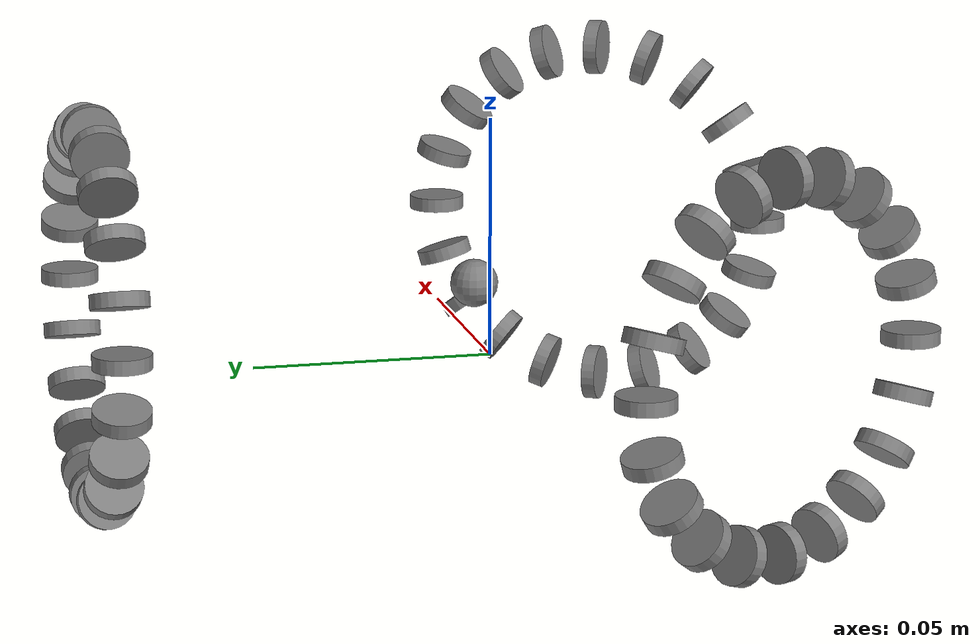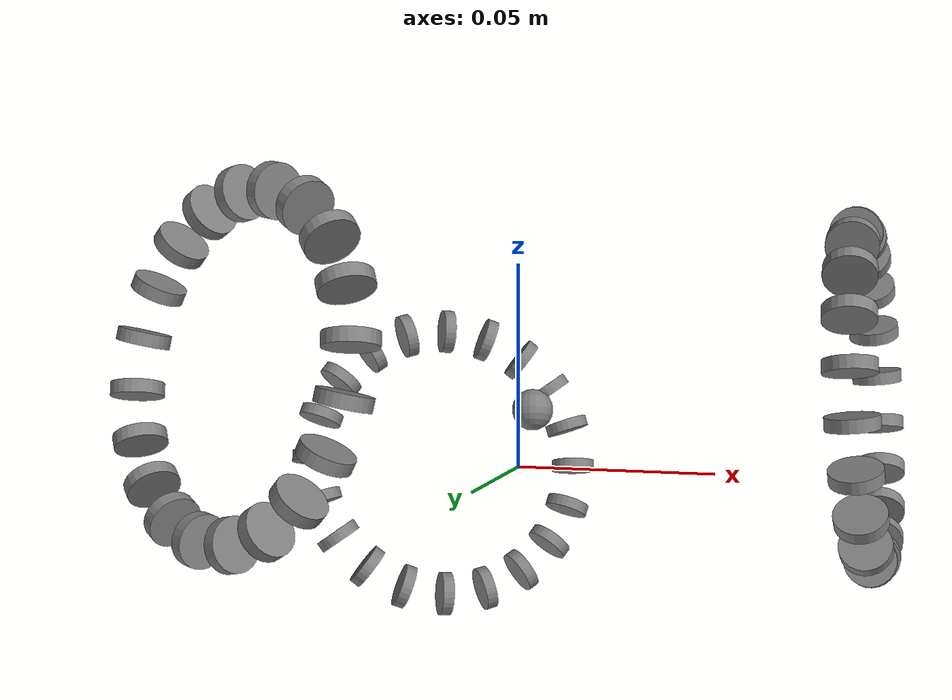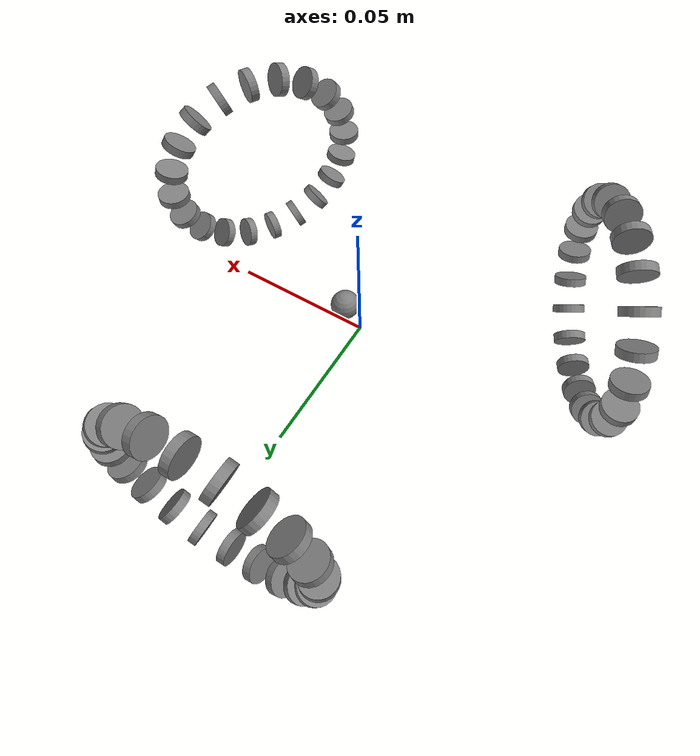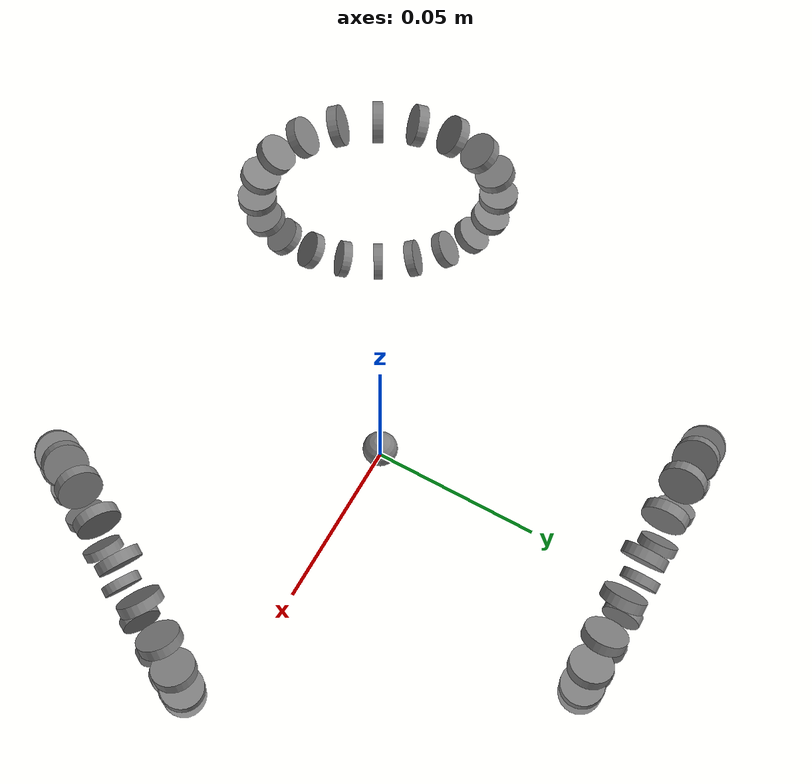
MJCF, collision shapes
<?xml version="1.0" ?>
<!-- Generated using onshape-to-robot -->
<!-- OnShape https://cad.onshape.com/documents/11c3398e78edfadf952cbdbc/w/4428506b5bb6358b44ff6764/e/975412fdc0fd0ba9ca2cf7b6 -->
<mujoco model="omnidirectional_mujoco">
    <compiler angle="radian" meshdir="assets" autolimits="true"/>
    <option noslip_iterations="1"/>
    <default>
        <default class="omnidirectional_mujoco">
            <joint frictionloss="0.1" armature="0.005"/>
            <position kp="50" dampratio="1"/>
            <default class="visual">
                <geom type="mesh" contype="0" conaffinity="0" group="2"/>
            </default>
            <default class="collision">
                <geom group="3"/>
            </default>
        </default>
    </default>
    <worldbody>
        <!-- Link body_2 -->
        <body name="body_2" pos="0 0 0" quat="1 0 0 0" childclass="omnidirectional_mujoco">
            <freejoint name="body_2_freejoint"/>
            <inertial pos="0.000413137 0.000238525 0.0129604" mass="0.55184" fullinertia="0.000615732 0.000620978 0.00118941 -4.54339e-06 -9.03686e-09 -5.21743e-09"/>
            <!-- Part plate -->
            <!-- Mesh plate -->
            <geom type="mesh" class="visual" pos="0 0 0" quat="1 0 0 0" mesh="plate" material="plate_material"/>
            <!-- Part plate_2 -->
            <!-- Mesh plate_2 -->
            <geom type="mesh" class="visual" pos="0 0 0.023" quat="1 0 0 0" mesh="plate" material="plate_material"/>
            <!-- Part motor -->
            <!-- Mesh motor -->
            <geom type="mesh" class="visual" pos="0 6.93889e-18 0" quat="0.5 0 0 -0.866025" mesh="motor" material="motor_material"/>
            <!-- Part motor_2 -->
            <!-- Mesh motor_2 -->
            <geom type="mesh" class="visual" pos="0 0 0" quat="1 0 0 0" mesh="motor" material="motor_material"/>
            <!-- Part motor_3 -->
            <!-- Mesh motor_3 -->
            <geom type="mesh" class="visual" pos="-1.73472e-18 -6.93889e-18 2.60209e-18" quat="0.5 0 0 0.866025" mesh="motor" material="motor_material"/>
            <!-- Frame body (dummy link + fixed joint) -->
            <site name="body" pos="0.00418699 0.00241736 0.0145" quat="0.965926 0 0 0.258819"/>
            <!-- Link wheel -->
            <body name="wheel" pos="0.069282 -0.04 0.013" quat="0.612372 -0.612372 -0.353553 0.353553">
                <!-- Joint from body_2 to wheel -->
                <joint name="wheel1_speed" type="hinge" frictionloss="0.0"/>
                <inertial pos="-9.28507e-11 -1.43812e-09 -0.0025" mass="0.0192491" fullinertia="6.87651e-06 6.87651e-06 1.36736e-05 4.74141e-13 -1.42889e-14 2.2762e-14"/>
                <!-- Part wheel -->
                <!-- Mesh wheel -->
                <geom type="mesh" class="visual" pos="-1.08731e-17 0.013 0.075" quat="0.612372 0.612372 0.353553 -0.353553" mesh="wheel" material="wheel_material"/>
                <!-- Link passivewheel -->
                <body name="passivewheel" pos="-0.0134903 -0.0350466 -0.0025" quat="0.705434 0.171758 0.68593 -0.0486126">
                    <!-- Joint from wheel to passivewheel -->
                    <joint name="w1_1_passive" type="hinge" frictionloss="0.0"/>
                    <inertial pos="-7.33894e-20 1.33556e-17 0.002" mass="0.00285906" fullinertia="2.77473e-08 2.77473e-08 4.89774e-08 -4.48199e-25 2.05686e-24 2.65374e-24"/>
                    <!-- Part passivewheel -->
                    <geom class="collision" pos="-8.65334e-20 1.37444e-17 0.002" quat="0 1 0 0" type="cylinder" size="0.006 0.0015"/>
                    <!-- Mesh passivewheel -->
                    <geom type="mesh" class="visual" pos="0 1.38778e-17 0.004" quat="0 1 0 0" mesh="passivewheel" material="passivewheel_material"/>
                </body>
                <!-- Link passivewheel_2 -->
                <body name="passivewheel_2" pos="-0.002 -0.0375 -0.0025" quat="0 0.707107 1.11022e-16 -0.707107">
                    <!-- Joint from wheel to passivewheel_2 -->
                    <joint name="w1_2_passive" type="hinge" frictionloss="0.0"/>
                    <inertial pos="-1.38094e-17 -3.88785e-19 -0.002" mass="0.00285906" fullinertia="2.77473e-08 2.77473e-08 4.89774e-08 3.7544e-39 -3.14348e-24 2.39064e-39"/>
                    <!-- Part passivewheel_2 -->
                    <geom class="collision" pos="-1.38226e-17 -6.23173e-35 -0.002" quat="0 1 0 0" type="cylinder" size="0.006 0.0015"/>
                    <!-- Mesh passivewheel_2 -->
                    <geom type="mesh" class="visual" pos="-1.38778e-17 0 -2.1684e-18" quat="0 1 0 0" mesh="passivewheel" material="passivewheel_material"/>
                </body>
                <!-- Link passivewheel_3 -->
                <body name="passivewheel_3" pos="0.00968602 -0.0362827 -0.0025" quat="0.705434 -0.171758 0.68593 0.0486126">
                    <!-- Joint from wheel to passivewheel_3 -->
                    <joint name="w1_3_passive" type="hinge" frictionloss="0.0"/>
                    <inertial pos="1.39053e-17 4.1565e-19 0.002" mass="0.00285906" fullinertia="2.77473e-08 2.77473e-08 4.89774e-08 -6.19881e-25 9.89486e-25 9.52171e-25"/>
                    <!-- Part passivewheel_3 -->
                    <geom class="collision" pos="1.38922e-17 2.6865e-20 0.002" quat="1 0 2.77556e-17 4.85723e-17" type="cylinder" size="0.006 0.0015"/>
                    <!-- Mesh passivewheel_3 -->
                    <geom type="mesh" class="visual" pos="1.38778e-17 0 -6.93889e-18" quat="1 0 2.77556e-17 4.85723e-17" mesh="passivewheel" material="passivewheel_material"/>
                </body>
                <!-- Link passivewheel_4 -->
                <body name="passivewheel_4" pos="0.0204239 -0.0315137 -0.0025" quat="0.325109 0.699106 0.106073 -0.627936">
                    <!-- Joint from wheel to passivewheel_4 -->
                    <joint name="w1_4_passive" type="hinge" frictionloss="0.0"/>
                    <inertial pos="-1.39492e-17 3.14241e-18 -0.002" mass="0.00285906" fullinertia="2.77473e-08 2.77473e-08 4.89774e-08 -1.50205e-25 2.32706e-24 -2.54013e-24"/>
                    <!-- Part passivewheel_4 -->
                    <geom class="collision" pos="-1.39623e-17 3.53119e-18 -0.002" quat="0 1 0 0" type="cylinder" size="0.006 0.0015"/>
                    <!-- Mesh passivewheel_4 -->
                    <geom type="mesh" class="visual" pos="-1.38778e-17 3.46945e-18 -1.73472e-18" quat="0 1 0 0" mesh="passivewheel" material="passivewheel_material"/>
                </body>
                <!-- Link passivewheel_5 -->
                <body name="passivewheel_5" pos="0.0291626 -0.02366 -0.0025" quat="0.44995 0.68464 0.176827 -0.545477">
                    <!-- Joint from wheel to passivewheel_5 -->
                    <joint name="w1_5_passive" type="hinge" frictionloss="0.0"/>
                    <inertial pos="1.2573e-19 1.35251e-18 -0.002" mass="0.00285906" fullinertia="2.77473e-08 2.77473e-08 4.89774e-08 8.92466e-25 -2.3837e-24 -1.42084e-24"/>
                    <!-- Part passivewheel_5 -->
                    <geom class="collision" pos="1.12586e-19 1.7413e-18 -0.002" quat="0 1 0 0" type="cylinder" size="0.006 0.0015"/>
                    <!-- Mesh passivewheel_5 -->
                    <geom type="mesh" class="visual" pos="0 1.73472e-18 0" quat="0 1 0 0" mesh="passivewheel" material="passivewheel_material"/>
                </body>
                <!-- Link passivewheel_6 -->
                <body name="passivewheel_6" pos="0.0350466 -0.0134903 -0.0025" quat="0.544721 0.657385 0.26047 -0.450865">
                    <!-- Joint from wheel to passivewheel_6 -->
                    <joint name="w1_6_passive" type="hinge" frictionloss="0.0"/>
                    <inertial pos="-7.85727e-21 -1.22e-18 -0.002" mass="0.00285906" fullinertia="2.77473e-08 2.77473e-08 4.89774e-08 1.46704e-26 8.78998e-25 -3.12268e-25"/>
                    <!-- Part passivewheel_6 -->
                    <geom class="collision" pos="-2.10013e-20 -8.31218e-19 -0.002" quat="0 1 0 0" type="cylinder" size="0.006 0.0015"/>
                    <!-- Mesh passivewheel_6 -->
                    <geom type="mesh" class="visual" pos="0 -8.67362e-19 1.73472e-18" quat="0 1 0 0" mesh="passivewheel" material="passivewheel_material"/>
                </body>
                <!-- Link passivewheel_7 -->
                <body name="passivewheel_7" pos="0.0375 -0.002 -0.0025" quat="0.612372 0.612372 0.353553 -0.353553">
                    <!-- Joint from wheel to passivewheel_7 -->
                    <joint name="w1_7_passive" type="hinge" frictionloss="0.0"/>
                    <inertial pos="1.3144e-20 -1.34594e-18 -0.002" mass="0.00285906" fullinertia="2.77473e-08 2.77473e-08 4.89774e-08 2.56509e-39 -2.09345e-39 -1.51313e-38"/>
                    <!-- Part passivewheel_7 -->
                    <geom class="collision" pos="-1.97215e-34 -1.73472e-18 -0.002" quat="1 0 -1.24049e-21 -1.11022e-16" type="cylinder" size="0.006 0.0015"/>
                    <!-- Mesh passivewheel_7 -->
                    <geom type="mesh" class="visual" pos="0 -1.73472e-18 -0.004" quat="1 0 -1.24049e-21 -1.11022e-16" mesh="passivewheel" material="passivewheel_material"/>
                </body>
                <!-- Link passivewheel_8 -->
                <body name="passivewheel_8" pos="0.0362827 0.00968602 -0.0025" quat="0.544721 -0.657385 0.26047 0.450865">
                    <!-- Joint from wheel to passivewheel_8 -->
                    <joint name="w1_8_passive" type="hinge" frictionloss="0.0"/>
                    <inertial pos="-1.39027e-17 1.37287e-18 0.002" mass="0.00285906" fullinertia="2.77473e-08 2.77473e-08 4.89774e-08 3.02658e-25 7.81085e-25 -5.33888e-25"/>
                    <!-- Part passivewheel_8 -->
                    <geom class="collision" pos="-1.39158e-17 1.76166e-18 0.002" quat="0 1 0 0" type="cylinder" size="0.006 0.0015"/>
                    <!-- Mesh passivewheel_8 -->
                    <geom type="mesh" class="visual" pos="-1.38778e-17 1.73472e-18 0.004" quat="0 1 0 0" mesh="passivewheel" material="passivewheel_material"/>
                </body>
                <!-- Link passivewheel_9 -->
                <body name="passivewheel_9" pos="0.0315137 0.0204239 -0.0025" quat="0.68464 0.44995 0.545477 -0.176827">
                    <!-- Joint from wheel to passivewheel_9 -->
                    <joint name="w1_9_passive" type="hinge" frictionloss="0.0"/>
                    <inertial pos="-6.29107e-20 2.00403e-18 -0.002" mass="0.00285906" fullinertia="2.77473e-08 2.77473e-08 4.89774e-08 1.81304e-24 -3.34937e-24 -3.1984e-24"/>
                    <!-- Part passivewheel_9 -->
                    <geom class="collision" pos="-7.60547e-20 1.61524e-18 -0.002" quat="1 1.27569e-17 5.55112e-17 -1.38778e-16" type="cylinder" size="0.006 0.0015"/>
                    <!-- Mesh passivewheel_9 -->
                    <geom type="mesh" class="visual" pos="0 1.73472e-18 -0.004" quat="1 1.27569e-17 5.55112e-17 -1.38778e-16" mesh="passivewheel" material="passivewheel_material"/>
                </body>
                <!-- Link passivewheel_10 -->
                <body name="passivewheel_10" pos="0.02366 0.0291626 -0.0025" quat="0.699106 0.325109 0.627936 -0.106073">
                    <!-- Joint from wheel to passivewheel_10 -->
                    <joint name="w1_10_passive" type="hinge" frictionloss="0.0"/>
                    <inertial pos="2.75667e-17 1.76333e-18 -0.002" mass="0.00285906" fullinertia="2.77473e-08 2.77473e-08 4.89774e-08 -9.51103e-25 3.7954e-24 -3.63174e-25"/>
                    <!-- Part passivewheel_10 -->
                    <geom class="collision" pos="2.75535e-17 2.15212e-18 -0.002" quat="0 1 0 0" type="cylinder" size="0.006 0.0015"/>
                    <!-- Mesh passivewheel_10 -->
                    <geom type="mesh" class="visual" pos="2.77556e-17 2.05998e-18 1.73472e-18" quat="0 1 0 0" mesh="passivewheel" material="passivewheel_material"/>
                </body>
                <!-- Link passivewheel_11 -->
                <body name="passivewheel_11" pos="0.0134903 0.0350466 -0.0025" quat="0.705434 0.171758 0.68593 -0.0486126">
                    <!-- Joint from wheel to passivewheel_11 -->
                    <joint name="w1_11_passive" type="hinge" frictionloss="0.0"/>
                    <inertial pos="5.49999e-20 3.04416e-18 -0.002" mass="0.00285906" fullinertia="2.77473e-08 2.77473e-08 4.89774e-08 6.30044e-25 3.57847e-25 6.72405e-25"/>
                    <!-- Part passivewheel_11 -->
                    <geom class="collision" pos="4.18559e-20 3.43295e-18 -0.002" quat="0 1 0 0" type="cylinder" size="0.006 0.0015"/>
                    <!-- Mesh passivewheel_11 -->
                    <geom type="mesh" class="visual" pos="0 3.46945e-18 7.80626e-18" quat="0 1 0 0" mesh="passivewheel" material="passivewheel_material"/>
                </body>
                <!-- Link passivewheel_12 -->
                <body name="passivewheel_12" pos="0.002 0.0375 -0.0025" quat="0.707107 1.80742e-16 0.707107 -2.22045e-16">
                    <!-- Joint from wheel to passivewheel_12 -->
                    <joint name="w1_12_passive" type="hinge" frictionloss="0.0"/>
                    <inertial pos="2.75764e-17 -3.88785e-19 -0.002" mass="0.00285906" fullinertia="2.77473e-08 2.77473e-08 4.89774e-08 -8.55029e-41 4.29637e-24 -1.20739e-39"/>
                    <!-- Part passivewheel_12 -->
                    <geom class="collision" pos="2.75633e-17 4.93038e-35 -0.002" quat="0 1 0 0" type="cylinder" size="0.006 0.0015"/>
                    <!-- Mesh passivewheel_12 -->
                    <geom type="mesh" class="visual" pos="2.77556e-17 0 -4.77049e-18" quat="0 1 0 0" mesh="passivewheel" material="passivewheel_material"/>
                </body>
                <!-- Link passivewheel_13 -->
                <body name="passivewheel_13" pos="-0.00968602 0.0362827 -0.0025" quat="0.705434 -0.171758 0.68593 0.0486126">
                    <!-- Joint from wheel to passivewheel_13 -->
                    <joint name="w1_13_passive" type="hinge" frictionloss="0.0"/>
                    <inertial pos="8.53194e-20 -3.92688e-19 -0.002" mass="0.00285906" fullinertia="2.77473e-08 2.77473e-08 4.89774e-08 8.22243e-25 -3.87642e-24 5.15763e-26"/>
                    <!-- Part passivewheel_13 -->
                    <geom class="collision" pos="7.21753e-20 -3.90318e-21 -0.002" quat="0 1 0 0" type="cylinder" size="0.006 0.0015"/>
                    <!-- Mesh passivewheel_13 -->
                    <geom type="mesh" class="visual" pos="0 0 -1.30104e-18" quat="0 1 0 0" mesh="passivewheel" material="passivewheel_material"/>
                </body>
                <!-- Link passivewheel_14 -->
                <body name="passivewheel_14" pos="-0.0204239 0.0315137 -0.0025" quat="0.699106 -0.325109 0.627936 0.106073">
                    <!-- Joint from wheel to passivewheel_14 -->
                    <joint name="w1_14_passive" type="hinge" frictionloss="0.0"/>
                    <inertial pos="9.59088e-20 -6.26776e-18 -0.002" mass="0.00285906" fullinertia="2.77473e-08 2.77473e-08 4.89774e-08 1.49204e-24 -1.54068e-24 7.89487e-24"/>
                    <!-- Part passivewheel_14 -->
                    <geom class="collision" pos="8.27648e-20 -6.65655e-18 -0.002" quat="1 -2.64585e-17 2.22045e-16 -1.11022e-16" type="cylinder" size="0.006 0.0015"/>
                    <!-- Mesh passivewheel_14 -->
                    <geom type="mesh" class="visual" pos="0 -6.93889e-18 -0.004" quat="1 -2.64585e-17 2.22045e-16 -1.11022e-16" mesh="passivewheel" material="passivewheel_material"/>
                </body>
                <!-- Link passivewheel_15 -->
                <body name="passivewheel_15" pos="-0.0291626 0.02366 -0.0025" quat="0.68464 -0.44995 0.545477 0.176827">
                    <!-- Joint from wheel to passivewheel_15 -->
                    <joint name="w1_15_passive" type="hinge" frictionloss="0.0"/>
                    <inertial pos="6.7241e-20 1.42897e-17 -0.002" mass="0.00285906" fullinertia="2.77473e-08 2.77473e-08 4.89774e-08 -9.19631e-27 1.06648e-24 1.28664e-24"/>
                    <!-- Part passivewheel_15 -->
                    <geom class="collision" pos="5.4097e-20 1.39009e-17 -0.002" quat="1 0 0 1.66533e-16" type="cylinder" size="0.006 0.0015"/>
                    <!-- Mesh passivewheel_15 -->
                    <geom type="mesh" class="visual" pos="0 1.38778e-17 -0.004" quat="1 0 0 1.66533e-16" mesh="passivewheel" material="passivewheel_material"/>
                </body>
                <!-- Link passivewheel_16 -->
                <body name="passivewheel_16" pos="-0.0350466 0.0134903 -0.0025" quat="0.657385 -0.544721 0.450865 0.26047">
                    <!-- Joint from wheel to passivewheel_16 -->
                    <joint name="w1_16_passive" type="hinge" frictionloss="0.0"/>
                    <inertial pos="6.97313e-18 -1.33089e-17 -0.002" mass="0.00285906" fullinertia="2.77473e-08 2.77473e-08 4.89774e-08 -1.79804e-25 -1.30576e-25 4.98862e-24"/>
                    <!-- Part passivewheel_16 -->
                    <geom class="collision" pos="6.95999e-18 -1.36977e-17 -0.002" quat="1 0 -2.22045e-16 -2.77556e-17" type="cylinder" size="0.006 0.0015"/>
                    <!-- Mesh passivewheel_16 -->
                    <geom type="mesh" class="visual" pos="6.93889e-18 -1.38778e-17 -0.004" quat="1 0 -2.22045e-16 -2.77556e-17" mesh="passivewheel" material="passivewheel_material"/>
                </body>
                <!-- Link passivewheel_17 -->
                <body name="passivewheel_17" pos="-0.0375 0.002 -0.0025" quat="0.612372 0.612372 0.353553 -0.353553">
                    <!-- Joint from wheel to passivewheel_17 -->
                    <joint name="w1_17_passive" type="hinge" frictionloss="0.0"/>
                    <inertial pos="1.3144e-20 1.3489e-17 0.002" mass="0.00285906" fullinertia="2.77473e-08 2.77473e-08 4.89774e-08 3.42012e-40 -7.15594e-53 1.89141e-39"/>
                    <!-- Part passivewheel_17 -->
                    <geom class="collision" pos="2.27711e-48 1.38778e-17 0.002" quat="0 1 0 0" type="cylinder" size="0.006 0.0015"/>
                    <!-- Mesh passivewheel_17 -->
                    <geom type="mesh" class="visual" pos="0 1.38778e-17 0.004" quat="0 1 0 0" mesh="passivewheel" material="passivewheel_material"/>
                </body>
                <!-- Link passivewheel_18 -->
                <body name="passivewheel_18" pos="-0.0362827 -0.00968602 -0.0025" quat="0.544721 -0.657385 0.26047 0.450865">
                    <!-- Joint from wheel to passivewheel_18 -->
                    <joint name="w1_18_passive" type="hinge" frictionloss="0.0"/>
                    <inertial pos="6.92841e-18 -1.41711e-17 -0.002" mass="0.00285906" fullinertia="2.77473e-08 2.77473e-08 4.89774e-08 -6.34976e-26 1.59423e-25 -2.5758e-24"/>
                    <!-- Part passivewheel_18 -->
                    <geom class="collision" pos="6.91527e-18 -1.37823e-17 -0.002" quat="0 1 0 0" type="cylinder" size="0.006 0.0015"/>
                    <!-- Mesh passivewheel_18 -->
                    <geom type="mesh" class="visual" pos="6.93889e-18 -1.38778e-17 1.73472e-18" quat="0 1 0 0" mesh="passivewheel" material="passivewheel_material"/>
                </body>
                <!-- Link passivewheel_19 -->
                <body name="passivewheel_19" pos="-0.0315137 -0.0204239 -0.0025" quat="0.44995 -0.68464 0.176827 0.545477">
                    <!-- Joint from wheel to passivewheel_19 -->
                    <joint name="w1_19_passive" type="hinge" frictionloss="0.0"/>
                    <inertial pos="-6.98422e-18 -4.67101e-19 -0.002" mass="0.00285906" fullinertia="2.77473e-08 2.77473e-08 4.89774e-08 1.08884e-24 1.39429e-24 4.90038e-24"/>
                    <!-- Part passivewheel_19 -->
                    <geom class="collision" pos="-6.99736e-18 -7.83154e-20 -0.002" quat="0 1 0 0" type="cylinder" size="0.006 0.0015"/>
                    <!-- Mesh passivewheel_19 -->
                    <geom type="mesh" class="visual" pos="-6.93889e-18 0 5.20417e-18" quat="0 1 0 0" mesh="passivewheel" material="passivewheel_material"/>
                </body>
                <!-- Link passivewheel_20 -->
                <body name="passivewheel_20" pos="-0.02366 -0.0291626 -0.0025" quat="0.325109 -0.699106 0.106073 0.627936">
                    <!-- Joint from wheel to passivewheel_20 -->
                    <joint name="w1_20_passive" type="hinge" frictionloss="0.0"/>
                    <inertial pos="-1.71821e-20 1.32768e-17 -0.002" mass="0.00285906" fullinertia="2.77473e-08 2.77473e-08 4.89774e-08 6.14637e-25 1.51023e-24 5.2908e-24"/>
                    <!-- Part passivewheel_20 -->
                    <geom class="collision" pos="-3.03261e-20 1.36656e-17 -0.002" quat="0 1 0 0" type="cylinder" size="0.006 0.0015"/>
                    <!-- Mesh passivewheel_20 -->
                    <geom type="mesh" class="visual" pos="0 1.38778e-17 6.07153e-18" quat="0 1 0 0" mesh="passivewheel" material="passivewheel_material"/>
                </body>
            </body>
            <!-- Link wheel_2 -->
            <body name="wheel_2" pos="-0.069282 -0.04 0.013" quat="0.353553 0.353553 0.612372 0.612372">
                <!-- Joint from body_2 to wheel_2 -->
                <joint name="wheel3_speed" type="hinge" frictionloss="0.0"/>
                <inertial pos="-9.28507e-11 1.43812e-09 -0.0025" mass="0.0192491" fullinertia="6.87651e-06 6.87651e-06 1.36736e-05 -4.74141e-13 1.42889e-14 2.2762e-14"/>
                <!-- Part wheel_2 -->
                <!-- Mesh wheel_2 -->
                <geom type="mesh" class="visual" pos="-2.13199e-17 -0.013 -0.08" quat="0.612372 -0.612372 -0.353553 -0.353553" mesh="wheel" material="wheel_material"/>
                <!-- Link passivewheel_21 -->
                <body name="passivewheel_21" pos="-0.0134903 0.0350466 -0.0025" quat="0.0486126 -0.68593 -0.171758 -0.705434">
                    <!-- Joint from wheel_2 to passivewheel_21 -->
                    <joint name="w3_1_passive" type="hinge" frictionloss="0.0"/>
                    <inertial pos="1.38637e-17 1.36393e-17 0.002" mass="0.00285906" fullinertia="2.77473e-08 2.77473e-08 4.89774e-08 -1.6627e-25 2.25287e-25 -4.29771e-24"/>
                    <!-- Part passivewheel_21 -->
                    <geom class="collision" pos="1.38506e-17 1.40281e-17 0.002" quat="0 1 0 0" type="cylinder" size="0.006 0.0015"/>
                    <!-- Mesh passivewheel_21 -->
                    <geom type="mesh" class="visual" pos="1.38778e-17 1.38778e-17 0.004" quat="0 1 0 0" mesh="passivewheel" material="passivewheel_material"/>
                </body>
                <!-- Link passivewheel_22 -->
                <body name="passivewheel_22" pos="-0.002 0.0375 -0.0025" quat="0.707107 3.69118e-16 -0.707107 5.55112e-17">
                    <!-- Joint from wheel_2 to passivewheel_22 -->
                    <joint name="w3_2_passive" type="hinge" frictionloss="0.0"/>
                    <inertial pos="1.47359e-21 -3.88785e-19 -0.002" mass="0.00285906" fullinertia="2.77473e-08 2.77473e-08 4.89774e-08 -3.76985e-39 4.29266e-26 1.42929e-39"/>
                    <!-- Part passivewheel_22 -->
                    <geom class="collision" pos="-1.16704e-20 1.22442e-35 -0.002" quat="0 1 0 0" type="cylinder" size="0.006 0.0015"/>
                    <!-- Mesh passivewheel_22 -->
                    <geom type="mesh" class="visual" pos="0 0 -1.30104e-18" quat="0 1 0 0" mesh="passivewheel" material="passivewheel_material"/>
                </body>
                <!-- Link passivewheel_23 -->
                <body name="passivewheel_23" pos="0.00968602 0.0362827 -0.0025" quat="0.0486126 0.68593 -0.171758 0.705434">
                    <!-- Joint from wheel_2 to passivewheel_23 -->
                    <joint name="w3_3_passive" type="hinge" frictionloss="0.0"/>
                    <inertial pos="-2.80594e-17 1.42039e-17 0.002" mass="0.00285906" fullinertia="2.77473e-08 2.77473e-08 4.89774e-08 -1.05229e-24 -6.08561e-24 -8.45667e-25"/>
                    <!-- Part passivewheel_23 -->
                    <geom class="collision" pos="-2.80726e-17 1.38151e-17 0.002" quat="1 1.40555e-17 -5.55112e-17 -2.77556e-16" type="cylinder" size="0.006 0.0015"/>
                    <!-- Mesh passivewheel_23 -->
                    <geom type="mesh" class="visual" pos="-2.77556e-17 1.38778e-17 8.67362e-19" quat="1 1.40555e-17 -5.55112e-17 -2.77556e-16" mesh="passivewheel" material="passivewheel_material"/>
                </body>
                <!-- Link passivewheel_24 -->
                <body name="passivewheel_24" pos="0.0204239 0.0315137 -0.0025" quat="0.627936 -0.106073 -0.699106 -0.325109">
                    <!-- Joint from wheel_2 to passivewheel_24 -->
                    <joint name="w3_4_passive" type="hinge" frictionloss="0.0"/>
                    <inertial pos="2.76409e-20 2.96171e-18 -0.002" mass="0.00285906" fullinertia="2.77473e-08 2.77473e-08 4.89774e-08 -5.45747e-25 -6.82864e-25 2.20299e-24"/>
                    <!-- Part passivewheel_24 -->
                    <geom class="collision" pos="1.44968e-20 3.3505e-18 -0.002" quat="0 1 0 0" type="cylinder" size="0.006 0.0015"/>
                    <!-- Mesh passivewheel_24 -->
                    <geom type="mesh" class="visual" pos="0 3.46945e-18 3.46945e-18" quat="0 1 0 0" mesh="passivewheel" material="passivewheel_material"/>
                </body>
                <!-- Link passivewheel_25 -->
                <body name="passivewheel_25" pos="0.0291626 0.02366 -0.0025" quat="0.545477 -0.176827 -0.68464 -0.44995">
                    <!-- Joint from wheel_2 to passivewheel_25 -->
                    <joint name="w3_5_passive" type="hinge" frictionloss="0.0"/>
                    <inertial pos="1.10858e-21 -1.19309e-18 -0.002" mass="0.00285906" fullinertia="2.77473e-08 2.77473e-08 4.89774e-08 -3.78613e-25 -5.72825e-26 -1.75998e-24"/>
                    <!-- Part passivewheel_25 -->
                    <geom class="collision" pos="-1.20354e-20 -8.04302e-19 -0.002" quat="0 1 0 0" type="cylinder" size="0.006 0.0015"/>
                    <!-- Mesh passivewheel_25 -->
                    <geom type="mesh" class="visual" pos="0 -8.67362e-19 -1.73472e-18" quat="0 1 0 0" mesh="passivewheel" material="passivewheel_material"/>
                </body>
                <!-- Link passivewheel_26 -->
                <body name="passivewheel_26" pos="0.0350466 0.0134903 -0.0025" quat="0.450865 -0.26047 -0.657385 -0.544721">
                    <!-- Joint from wheel_2 to passivewheel_26 -->
                    <joint name="w3_6_passive" type="hinge" frictionloss="0.0"/>
                    <inertial pos="-1.38989e-17 -1.25506e-18 -0.002" mass="0.00285906" fullinertia="2.77473e-08 2.77473e-08 4.89774e-08 3.58631e-26 1.13295e-24 1.76078e-24"/>
                    <!-- Part passivewheel_26 -->
                    <geom class="collision" pos="-1.3912e-17 -8.66279e-19 -0.002" quat="0 1 0 0" type="cylinder" size="0.006 0.0015"/>
                    <!-- Mesh passivewheel_26 -->
                    <geom type="mesh" class="visual" pos="-1.38778e-17 -8.67362e-19 -1.73472e-18" quat="0 1 0 0" mesh="passivewheel" material="passivewheel_material"/>
                </body>
                <!-- Link passivewheel_27 -->
                <body name="passivewheel_27" pos="0.0375 0.002 -0.0025" quat="0.353553 -0.353553 -0.612372 -0.612372">
                    <!-- Joint from wheel_2 to passivewheel_27 -->
                    <joint name="w3_7_passive" type="hinge" frictionloss="0.0"/>
                    <inertial pos="1.3144e-20 -3.08066e-18 -0.002" mass="0.00285906" fullinertia="2.77473e-08 2.77473e-08 4.89774e-08 2.56509e-39 -2.09345e-39 -1.51313e-38"/>
                    <!-- Part passivewheel_27 -->
                    <geom class="collision" pos="-1.97215e-34 -3.46945e-18 -0.002" quat="1 0 -1.24049e-21 -1.11022e-16" type="cylinder" size="0.006 0.0015"/>
                    <!-- Mesh passivewheel_27 -->
                    <geom type="mesh" class="visual" pos="0 -3.46945e-18 -0.004" quat="1 0 -1.24049e-21 -1.11022e-16" mesh="passivewheel" material="passivewheel_material"/>
                </body>
                <!-- Link passivewheel_28 -->
                <body name="passivewheel_28" pos="0.0362827 -0.00968602 -0.0025" quat="0.450865 0.26047 -0.657385 0.544721">
                    <!-- Joint from wheel_2 to passivewheel_28 -->
                    <joint name="w3_8_passive" type="hinge" frictionloss="0.0"/>
                    <inertial pos="1.38914e-17 -3.32822e-19 0.002" mass="0.00285906" fullinertia="2.77473e-08 2.77473e-08 4.89774e-08 1.07718e-25 1.23908e-25 -1.51535e-24"/>
                    <!-- Part passivewheel_28 -->
                    <geom class="collision" pos="1.38783e-17 5.59634e-20 0.002" quat="0 1 0 0" type="cylinder" size="0.006 0.0015"/>
                    <!-- Mesh passivewheel_28 -->
                    <geom type="mesh" class="visual" pos="1.38778e-17 0 0.004" quat="0 1 0 0" mesh="passivewheel" material="passivewheel_material"/>
                </body>
                <!-- Link passivewheel_29 -->
                <body name="passivewheel_29" pos="0.0315137 -0.0204239 -0.0025" quat="0.176827 -0.545477 -0.44995 -0.68464">
                    <!-- Joint from wheel_2 to passivewheel_29 -->
                    <joint name="w3_9_passive" type="hinge" frictionloss="0.0"/>
                    <inertial pos="1.39343e-17 -1.31396e-18 -0.002" mass="0.00285906" fullinertia="2.77473e-08 2.77473e-08 4.89774e-08 1.4048e-24 3.17155e-25 1.43427e-24"/>
                    <!-- Part passivewheel_29 -->
                    <geom class="collision" pos="1.39212e-17 -1.70274e-18 -0.002" quat="1 0 2.77556e-17 -7.11237e-17" type="cylinder" size="0.006 0.0015"/>
                    <!-- Mesh passivewheel_29 -->
                    <geom type="mesh" class="visual" pos="1.38778e-17 -1.73472e-18 -0.004" quat="1 0 2.77556e-17 -7.11237e-17" mesh="passivewheel" material="passivewheel_material"/>
                </body>
                <!-- Link passivewheel_30 -->
                <body name="passivewheel_30" pos="0.02366 -0.0291626 -0.0025" quat="0.106073 -0.627936 -0.325109 -0.699106">
                    <!-- Joint from wheel_2 to passivewheel_30 -->
                    <joint name="w3_10_passive" type="hinge" frictionloss="0.0"/>
                    <inertial pos="-4.93237e-20 2.88017e-18 -0.002" mass="0.00285906" fullinertia="2.77473e-08 2.77473e-08 4.89774e-08 -5.53782e-25 1.90441e-25 3.35227e-24"/>
                    <!-- Part passivewheel_30 -->
                    <geom class="collision" pos="-6.24677e-20 3.26896e-18 -0.002" quat="0 1 0 0" type="cylinder" size="0.006 0.0015"/>
                    <!-- Mesh passivewheel_30 -->
                    <geom type="mesh" class="visual" pos="0 3.36103e-18 0" quat="0 1 0 0" mesh="passivewheel" material="passivewheel_material"/>
                </body>
                <!-- Link passivewheel_31 -->
                <body name="passivewheel_31" pos="0.0134903 -0.0350466 -0.0025" quat="0.0486126 -0.68593 -0.171758 -0.705434">
                    <!-- Joint from wheel_2 to passivewheel_31 -->
                    <joint name="w3_11_passive" type="hinge" frictionloss="0.0"/>
                    <inertial pos="1.38453e-17 3.05141e-18 -0.002" mass="0.00285906" fullinertia="2.77473e-08 2.77473e-08 4.89774e-08 -9.55002e-25 7.38011e-26 3.05475e-26"/>
                    <!-- Part passivewheel_31 -->
                    <geom class="collision" pos="1.38321e-17 3.4402e-18 -0.002" quat="0 1 0 0" type="cylinder" size="0.006 0.0015"/>
                    <!-- Mesh passivewheel_31 -->
                    <geom type="mesh" class="visual" pos="1.38778e-17 3.46945e-18 4.33681e-18" quat="0 1 0 0" mesh="passivewheel" material="passivewheel_material"/>
                </body>
                <!-- Link passivewheel_32 -->
                <body name="passivewheel_32" pos="0.002 -0.0375 -0.0025" quat="1.99855e-17 -0.707107 0 -0.707107">
                    <!-- Joint from wheel_2 to passivewheel_32 -->
                    <joint name="w3_12_passive" type="hinge" frictionloss="0.0"/>
                    <inertial pos="1.40615e-17 -3.88785e-19 -0.002" mass="0.00285906" fullinertia="2.77473e-08 2.77473e-08 4.89774e-08 1.06879e-41 -3.57153e-24 -3.42012e-40"/>
                    <!-- Part passivewheel_32 -->
                    <geom class="collision" pos="1.40483e-17 0 -0.002" quat="0 1 0 0" type="cylinder" size="0.006 0.0015"/>
                    <!-- Mesh passivewheel_32 -->
                    <geom type="mesh" class="visual" pos="1.38778e-17 0 -7.37257e-18" quat="0 1 0 0" mesh="passivewheel" material="passivewheel_material"/>
                </body>
                <!-- Link passivewheel_33 -->
                <body name="passivewheel_33" pos="-0.00968602 -0.0362827 -0.0025" quat="0.0486126 0.68593 -0.171758 0.705434">
                    <!-- Joint from wheel_2 to passivewheel_33 -->
                    <joint name="w3_13_passive" type="hinge" frictionloss="0.0"/>
                    <inertial pos="-1.38828e-17 -2.88919e-19 -0.002" mass="0.00285906" fullinertia="2.77473e-08 2.77473e-08 4.89774e-08 -5.36201e-25 1.65647e-24 -2.97731e-24"/>
                    <!-- Part passivewheel_33 -->
                    <geom class="collision" pos="-1.38959e-17 9.9866e-20 -0.002" quat="0 1 0 0" type="cylinder" size="0.006 0.0015"/>
                    <!-- Mesh passivewheel_33 -->
                    <geom type="mesh" class="visual" pos="-1.38778e-17 0 -4.77049e-18" quat="0 1 0 0" mesh="passivewheel" material="passivewheel_material"/>
                </body>
                <!-- Link passivewheel_34 -->
                <body name="passivewheel_34" pos="-0.0204239 -0.0315137 -0.0025" quat="0.106073 0.627936 -0.325109 0.699106">
                    <!-- Joint from wheel_2 to passivewheel_34 -->
                    <joint name="w3_14_passive" type="hinge" frictionloss="0.0"/>
                    <inertial pos="5.01277e-21 -6.43766e-18 -0.002" mass="0.00285906" fullinertia="2.77473e-08 2.77473e-08 4.89774e-08 -1.6752e-24 1.12651e-24 1.00752e-24"/>
                    <!-- Part passivewheel_34 -->
                    <geom class="collision" pos="-8.13123e-21 -6.82645e-18 -0.002" quat="1 -0 -0 -2.77556e-17" type="cylinder" size="0.006 0.0015"/>
                    <!-- Mesh passivewheel_34 -->
                    <geom type="mesh" class="visual" pos="0 -6.93889e-18 -0.004" quat="1 -0 -0 -2.77556e-17" mesh="passivewheel" material="passivewheel_material"/>
                </body>
                <!-- Link passivewheel_35 -->
                <body name="passivewheel_35" pos="-0.0291626 -0.02366 -0.0025" quat="0.176827 0.545477 -0.44995 0.68464">
                    <!-- Joint from wheel_2 to passivewheel_35 -->
                    <joint name="w3_15_passive" type="hinge" frictionloss="0.0"/>
                    <inertial pos="-9.43518e-20 1.40725e-17 -0.002" mass="0.00285906" fullinertia="2.77473e-08 2.77473e-08 4.89774e-08 -1.89727e-25 -2.74367e-24 -2.03776e-24"/>
                    <!-- Part passivewheel_35 -->
                    <geom class="collision" pos="-1.07496e-19 1.36837e-17 -0.002" quat="1 1.52546e-16 -1.11022e-16 -1.11022e-16" type="cylinder" size="0.006 0.0015"/>
                    <!-- Mesh passivewheel_35 -->
                    <geom type="mesh" class="visual" pos="0 1.38778e-17 -0.004" quat="1 1.52546e-16 -1.11022e-16 -1.11022e-16" mesh="passivewheel" material="passivewheel_material"/>
                </body>
                <!-- Link passivewheel_36 -->
                <body name="passivewheel_36" pos="-0.0350466 -0.0134903 -0.0025" quat="0.26047 0.450865 -0.544721 0.657385">
                    <!-- Joint from wheel_2 to passivewheel_36 -->
                    <joint name="w3_16_passive" type="hinge" frictionloss="0.0"/>
                    <inertial pos="-7.01135e-20 2.61525e-19 -0.002" mass="0.00285906" fullinertia="2.77473e-08 2.77473e-08 4.89774e-08 -4.15318e-25 -3.63959e-24 -3.98001e-24"/>
                    <!-- Part passivewheel_36 -->
                    <geom class="collision" pos="-8.32575e-20 -1.2726e-19 -0.002" quat="1 2.17038e-17 -5.55112e-17 2.77556e-16" type="cylinder" size="0.006 0.0015"/>
                    <!-- Mesh passivewheel_36 -->
                    <geom type="mesh" class="visual" pos="0 0 -0.004" quat="1 2.17038e-17 -5.55112e-17 2.77556e-16" mesh="passivewheel" material="passivewheel_material"/>
                </body>
                <!-- Link passivewheel_37 -->
                <body name="passivewheel_37" pos="-0.0375 -0.002 -0.0025" quat="0.353553 -0.353553 -0.612372 -0.612372">
                    <!-- Joint from wheel_2 to passivewheel_37 -->
                    <joint name="w3_17_passive" type="hinge" frictionloss="0.0"/>
                    <inertial pos="1.3144e-20 1.3489e-17 0.002" mass="0.00285906" fullinertia="2.77473e-08 2.77473e-08 4.89774e-08 3.42012e-40 -7.15594e-53 1.89141e-39"/>
                    <!-- Part passivewheel_37 -->
                    <geom class="collision" pos="2.27711e-48 1.38778e-17 0.002" quat="0 1 0 0" type="cylinder" size="0.006 0.0015"/>
                    <!-- Mesh passivewheel_37 -->
                    <geom type="mesh" class="visual" pos="0 1.38778e-17 0.004" quat="0 1 0 0" mesh="passivewheel" material="passivewheel_material"/>
                </body>
                <!-- Link passivewheel_38 -->
                <body name="passivewheel_38" pos="-0.0362827 0.00968602 -0.0025" quat="0.450865 0.26047 -0.657385 0.544721">
                    <!-- Joint from wheel_2 to passivewheel_38 -->
                    <joint name="w3_18_passive" type="hinge" frictionloss="0.0"/>
                    <inertial pos="4.67192e-22 -1.92539e-19 -0.002" mass="0.00285906" fullinertia="2.77473e-08 2.77473e-08 4.89774e-08 1.84005e-26 -3.97591e-25 -4.41725e-24"/>
                    <!-- Part passivewheel_38 -->
                    <geom class="collision" pos="-1.26768e-20 1.96246e-19 -0.002" quat="0 1 0 0" type="cylinder" size="0.006 0.0015"/>
                    <!-- Mesh passivewheel_38 -->
                    <geom type="mesh" class="visual" pos="0 0 3.46945e-18" quat="0 1 0 0" mesh="passivewheel" material="passivewheel_material"/>
                </body>
                <!-- Link passivewheel_39 -->
                <body name="passivewheel_39" pos="-0.0315137 0.0204239 -0.0025" quat="0.545477 0.176827 -0.68464 0.44995">
                    <!-- Joint from wheel_2 to passivewheel_39 -->
                    <joint name="w3_19_passive" type="hinge" frictionloss="0.0"/>
                    <inertial pos="-1.83256e-20 -4.19716e-19 -0.002" mass="0.00285906" fullinertia="2.77473e-08 2.77473e-08 4.89774e-08 9.25127e-25 -1.08452e-24 1.78044e-24"/>
                    <!-- Part passivewheel_39 -->
                    <geom class="collision" pos="-3.14697e-20 -3.09308e-20 -0.002" quat="0 1 0 0" type="cylinder" size="0.006 0.0015"/>
                    <!-- Mesh passivewheel_39 -->
                    <geom type="mesh" class="visual" pos="0 0 0" quat="0 1 0 0" mesh="passivewheel" material="passivewheel_material"/>
                </body>
                <!-- Link passivewheel_40 -->
                <body name="passivewheel_40" pos="-0.02366 0.0291626 -0.0025" quat="0.627936 0.106073 -0.699106 0.325109">
                    <!-- Joint from wheel_2 to passivewheel_40 -->
                    <joint name="w3_20_passive" type="hinge" frictionloss="0.0"/>
                    <inertial pos="4.88319e-20 -7.24087e-19 -0.002" mass="0.00285906" fullinertia="2.77473e-08 2.77473e-08 4.89774e-08 1.90815e-24 -1.2352e-25 6.24828e-24"/>
                    <!-- Part passivewheel_40 -->
                    <geom class="collision" pos="3.56879e-20 -3.35302e-19 -0.002" quat="5.95976e-17 1 -1.59867e-17 1.12223e-17" type="cylinder" size="0.006 0.0015"/>
                    <!-- Mesh passivewheel_40 -->
                    <geom type="mesh" class="visual" pos="0 0 -4.33681e-18" quat="5.95976e-17 1 -1.59867e-17 1.12223e-17" mesh="passivewheel" material="passivewheel_material"/>
                </body>
            </body>
            <!-- Link wheel_3 -->
            <body name="wheel_3" pos="-6.79647e-17 0.08 0.013" quat="0.707107 0.707107 3.33067e-16 2.14667e-16">
                <!-- Joint from body_2 to wheel_3 -->
                <joint name="wheel2_speed" type="hinge" frictionloss="0.0"/>
                <inertial pos="-9.28507e-11 -1.43812e-09 -0.0025" mass="0.0192491" fullinertia="6.87651e-06 6.87651e-06 1.36736e-05 4.74141e-13 -1.42889e-14 2.2762e-14"/>
                <!-- Part wheel_3 -->
                <!-- Mesh wheel_3 -->
                <geom type="mesh" class="visual" pos="-7.12482e-18 0.013 0.075" quat="0.612372 0.612372 0.353553 -0.353553" mesh="wheel" material="wheel_material"/>
                <!-- Link passivewheel_41 -->
                <body name="passivewheel_41" pos="-0.0134903 -0.0350466 -0.0025" quat="0.0486126 0.68593 -0.171758 0.705434">
                    <!-- Joint from wheel_3 to passivewheel_41 -->
                    <joint name="w2_1_passive" type="hinge" frictionloss="0.0"/>
                    <inertial pos="-1.38112e-20 -5.05758e-19 0.002" mass="0.00285906" fullinertia="2.77473e-08 2.77473e-08 4.89774e-08 3.34064e-25 7.60345e-25 2.33218e-24"/>
                    <!-- Part passivewheel_41 -->
                    <geom class="collision" pos="-2.69552e-20 -1.16973e-19 0.002" quat="0 1 0 0" type="cylinder" size="0.006 0.0015"/>
                    <!-- Mesh passivewheel_41 -->
                    <geom type="mesh" class="visual" pos="0 0 0.004" quat="0 1 0 0" mesh="passivewheel" material="passivewheel_material"/>
                </body>
                <!-- Link passivewheel_42 -->
                <body name="passivewheel_42" pos="-0.002 -0.0375 -0.0025" quat="0.707107 1.22536e-16 -0.707107 4.44089e-16">
                    <!-- Joint from wheel_3 to passivewheel_42 -->
                    <joint name="w2_2_passive" type="hinge" frictionloss="0.0"/>
                    <inertial pos="1.3144e-20 3.08066e-18 -0.002" mass="0.00285906" fullinertia="2.77473e-08 2.77473e-08 4.89774e-08 -1.03376e-39 -2.95507e-39 1.72914e-39"/>
                    <!-- Part passivewheel_42 -->
                    <geom class="collision" pos="4.93038e-35 3.46945e-18 -0.002" quat="0 1 0 0" type="cylinder" size="0.006 0.0015"/>
                    <!-- Mesh passivewheel_42 -->
                    <geom type="mesh" class="visual" pos="0 3.46945e-18 0" quat="0 1 0 0" mesh="passivewheel" material="passivewheel_material"/>
                </body>
                <!-- Link passivewheel_43 -->
                <body name="passivewheel_43" pos="0.00968602 -0.0362827 -0.0025" quat="0.0486126 -0.68593 -0.171758 -0.705434">
                    <!-- Joint from wheel_3 to passivewheel_43 -->
                    <joint name="w2_3_passive" type="hinge" frictionloss="0.0"/>
                    <inertial pos="1.38877e-17 4.23327e-19 0.002" mass="0.00285906" fullinertia="2.77473e-08 2.77473e-08 4.89774e-08 -2.80018e-25 -1.59989e-25 2.55366e-24"/>
                    <!-- Part passivewheel_43 -->
                    <geom class="collision" pos="1.38746e-17 3.45419e-20 0.002" quat="1 -0 1.11022e-16 1.38778e-17" type="cylinder" size="0.006 0.0015"/>
                    <!-- Mesh passivewheel_43 -->
                    <geom type="mesh" class="visual" pos="1.38778e-17 0 8.67362e-19" quat="1 -0 1.11022e-16 1.38778e-17" mesh="passivewheel" material="passivewheel_material"/>
                </body>
                <!-- Link passivewheel_44 -->
                <body name="passivewheel_44" pos="0.0204239 -0.0315137 -0.0025" quat="0.627936 0.106073 -0.699106 0.325109">
                    <!-- Joint from wheel_3 to passivewheel_44 -->
                    <joint name="w2_4_passive" type="hinge" frictionloss="0.0"/>
                    <inertial pos="1.39403e-17 -3.67067e-18 -0.002" mass="0.00285906" fullinertia="2.77473e-08 2.77473e-08 4.89774e-08 2.7038e-24 -1.7299e-24 8.55883e-25"/>
                    <!-- Part passivewheel_44 -->
                    <geom class="collision" pos="1.39272e-17 -3.28188e-18 -0.002" quat="0 1 0 0" type="cylinder" size="0.006 0.0015"/>
                    <!-- Mesh passivewheel_44 -->
                    <geom type="mesh" class="visual" pos="1.38778e-17 -3.36103e-18 4.33681e-18" quat="0 1 0 0" mesh="passivewheel" material="passivewheel_material"/>
                </body>
                <!-- Link passivewheel_45 -->
                <body name="passivewheel_45" pos="0.0291626 -0.02366 -0.0025" quat="0.545477 0.176827 -0.68464 0.44995">
                    <!-- Joint from wheel_3 to passivewheel_45 -->
                    <joint name="w2_5_passive" type="hinge" frictionloss="0.0"/>
                    <inertial pos="-1.37675e-17 -1.8114e-18 -0.002" mass="0.00285906" fullinertia="2.77473e-08 2.77473e-08 4.89774e-08 -1.36382e-24 -2.71545e-24 -4.96855e-24"/>
                    <!-- Part passivewheel_45 -->
                    <geom class="collision" pos="-1.37807e-17 -1.42261e-18 -0.002" quat="6.31119e-17 -1 -7.76582e-19 -9.10162e-18" type="cylinder" size="0.006 0.0015"/>
                    <!-- Mesh passivewheel_45 -->
                    <geom type="mesh" class="visual" pos="-1.38778e-17 -1.73472e-18 0" quat="6.31119e-17 -1 -7.76582e-19 -9.10162e-18" mesh="passivewheel" material="passivewheel_material"/>
                </body>
                <!-- Link passivewheel_46 -->
                <body name="passivewheel_46" pos="0.0350466 -0.0134903 -0.0025" quat="0.450865 0.26047 -0.657385 0.544721">
                    <!-- Joint from wheel_3 to passivewheel_46 -->
                    <joint name="w2_6_passive" type="hinge" frictionloss="0.0"/>
                    <inertial pos="1.39146e-17 -2.01208e-18 -0.002" mass="0.00285906" fullinertia="2.77473e-08 2.77473e-08 4.89774e-08 2.08795e-24 -9.55614e-25 -3.19362e-24"/>
                    <!-- Part passivewheel_46 -->
                    <geom class="collision" pos="1.39015e-17 -1.6233e-18 -0.002" quat="0 1 0 0" type="cylinder" size="0.006 0.0015"/>
                    <!-- Mesh passivewheel_46 -->
                    <geom type="mesh" class="visual" pos="1.38778e-17 -1.73472e-18 0" quat="0 1 0 0" mesh="passivewheel" material="passivewheel_material"/>
                </body>
                <!-- Link passivewheel_47 -->
                <body name="passivewheel_47" pos="0.0375 -0.002 -0.0025" quat="0.138087 0.138087 -0.693493 0.693493">
                    <!-- Joint from wheel_3 to passivewheel_47 -->
                    <joint name="w2_7_passive" type="hinge" frictionloss="0.0"/>
                    <inertial pos="1.3144e-20 -6.55011e-18 -0.002" mass="0.00285906" fullinertia="2.77473e-08 2.77473e-08 4.89774e-08 -2.11687e-24 1.1345e-38 -3.62632e-39"/>
                    <!-- Part passivewheel_47 -->
                    <geom class="collision" pos="3.27718e-34 -6.93889e-18 -0.002" quat="1 0 2.26159e-18 8.3114e-30" type="cylinder" size="0.006 0.0015"/>
                    <!-- Mesh passivewheel_47 -->
                    <geom type="mesh" class="visual" pos="0 -6.93889e-18 -0.004" quat="1 0 2.26159e-18 8.3114e-30" mesh="passivewheel" material="passivewheel_material"/>
                </body>
                <!-- Link passivewheel_48 -->
                <body name="passivewheel_48" pos="0.0362827 0.00968602 -0.0025" quat="0.450865 -0.26047 -0.657385 -0.544721">
                    <!-- Joint from wheel_3 to passivewheel_48 -->
                    <joint name="w2_8_passive" type="hinge" frictionloss="0.0"/>
                    <inertial pos="-1.37967e-17 -6.11718e-18 0.002" mass="0.00285906" fullinertia="2.77473e-08 2.77473e-08 4.89774e-08 -4.14666e-25 -2.19591e-24 -6.38881e-27"/>
                    <!-- Part passivewheel_48 -->
                    <geom class="collision" pos="-1.38098e-17 -5.72839e-18 0.002" quat="0 1 0 0" type="cylinder" size="0.006 0.0015"/>
                    <!-- Mesh passivewheel_48 -->
                    <geom type="mesh" class="visual" pos="-1.38778e-17 -5.63785e-18 0.004" quat="0 1 0 0" mesh="passivewheel" material="passivewheel_material"/>
                </body>
                <!-- Link passivewheel_49 -->
                <body name="passivewheel_49" pos="0.0315137 0.0204239 -0.0025" quat="0.176827 0.545477 -0.44995 0.68464">
                    <!-- Joint from wheel_3 to passivewheel_49 -->
                    <joint name="w2_9_passive" type="hinge" frictionloss="0.0"/>
                    <inertial pos="-1.39712e-17 1.06147e-18 -0.002" mass="0.00285906" fullinertia="2.77473e-08 2.77473e-08 4.89774e-08 1.60884e-24 -1.52759e-24 -4.22329e-24"/>
                    <!-- Part passivewheel_49 -->
                    <geom class="collision" pos="-1.39844e-17 6.72681e-19 -0.002" quat="1 -0 -1.11022e-16 -8.32667e-17" type="cylinder" size="0.006 0.0015"/>
                    <!-- Mesh passivewheel_49 -->
                    <geom type="mesh" class="visual" pos="-1.38778e-17 8.67362e-19 -0.004" quat="1 -0 -1.11022e-16 -8.32667e-17" mesh="passivewheel" material="passivewheel_material"/>
                </body>
                <!-- Link passivewheel_50 -->
                <body name="passivewheel_50" pos="0.02366 0.0291626 -0.0025" quat="0.106073 0.627936 -0.325109 0.699106">
                    <!-- Joint from wheel_3 to passivewheel_50 -->
                    <joint name="w2_10_passive" type="hinge" frictionloss="0.0"/>
                    <inertial pos="1.38708e-17 3.1606e-18 -0.002" mass="0.00285906" fullinertia="2.77473e-08 2.77473e-08 4.89774e-08 -1.12203e-24 -7.83282e-26 -1.18395e-24"/>
                    <!-- Part passivewheel_50 -->
                    <geom class="collision" pos="1.38576e-17 3.54939e-18 -0.002" quat="0 1 0 0" type="cylinder" size="0.006 0.0015"/>
                    <!-- Mesh passivewheel_50 -->
                    <geom type="mesh" class="visual" pos="1.38778e-17 3.46945e-18 -8.67362e-19" quat="0 1 0 0" mesh="passivewheel" material="passivewheel_material"/>
                </body>
                <!-- Link passivewheel_51 -->
                <body name="passivewheel_51" pos="0.0134903 0.0350466 -0.0025" quat="0.0486126 0.68593 -0.171758 0.705434">
                    <!-- Joint from wheel_3 to passivewheel_51 -->
                    <joint name="w2_11_passive" type="hinge" frictionloss="0.0"/>
                    <inertial pos="-1.39143e-17 -7.55572e-18 -0.002" mass="0.00285906" fullinertia="2.77473e-08 2.77473e-08 4.89774e-08 7.01407e-25 8.7846e-25 4.85575e-24"/>
                    <!-- Part passivewheel_51 -->
                    <geom class="collision" pos="-1.39274e-17 -7.16693e-18 -0.002" quat="0 1 0 0" type="cylinder" size="0.006 0.0015"/>
                    <!-- Mesh passivewheel_51 -->
                    <geom type="mesh" class="visual" pos="-1.38778e-17 -6.93889e-18 -8.67362e-19" quat="0 1 0 0" mesh="passivewheel" material="passivewheel_material"/>
                </body>
                <!-- Link passivewheel_52 -->
                <body name="passivewheel_52" pos="0.002 0.0375 -0.0025" quat="1.05961e-17 0.707107 -1.11022e-16 0.707107">
                    <!-- Joint from wheel_3 to passivewheel_52 -->
                    <joint name="w2_12_passive" type="hinge" frictionloss="0.0"/>
                    <inertial pos="1.3144e-20 -3.88785e-19 -0.002" mass="0.00285906" fullinertia="2.77473e-08 2.77473e-08 4.89774e-08 0 1.32842e-39 0"/>
                    <!-- Part passivewheel_52 -->
                    <geom class="collision" pos="-3.94666e-35 0 -0.002" quat="0 1 0 0" type="cylinder" size="0.006 0.0015"/>
                    <!-- Mesh passivewheel_52 -->
                    <geom type="mesh" class="visual" pos="0 0 0" quat="0 1 0 0" mesh="passivewheel" material="passivewheel_material"/>
                </body>
                <!-- Link passivewheel_53 -->
                <body name="passivewheel_53" pos="-0.00968602 0.0362827 -0.0025" quat="0.0486126 -0.68593 -0.171758 -0.705434">
                    <!-- Joint from wheel_3 to passivewheel_53 -->
                    <joint name="w2_13_passive" type="hinge" frictionloss="0.0"/>
                    <inertial pos="-1.38741e-17 1.35848e-17 -0.002" mass="0.00285906" fullinertia="2.77473e-08 2.77473e-08 4.89774e-08 -5.20219e-25 2.89536e-25 -6.66309e-25"/>
                    <!-- Part passivewheel_53 -->
                    <geom class="collision" pos="-1.38872e-17 1.39736e-17 -0.002" quat="0 1 0 0" type="cylinder" size="0.006 0.0015"/>
                    <!-- Mesh passivewheel_53 -->
                    <geom type="mesh" class="visual" pos="-1.38778e-17 1.38778e-17 -3.46945e-18" quat="0 1 0 0" mesh="passivewheel" material="passivewheel_material"/>
                </body>
                <!-- Link passivewheel_54 -->
                <body name="passivewheel_54" pos="-0.0204239 0.0315137 -0.0025" quat="0.106073 -0.627936 -0.325109 -0.699106">
                    <!-- Joint from wheel_3 to passivewheel_54 -->
                    <joint name="w2_14_passive" type="hinge" frictionloss="0.0"/>
                    <inertial pos="1.386e-17 5.5829e-19 -0.002" mass="0.00285906" fullinertia="2.77473e-08 2.77473e-08 4.89774e-08 -1.10988e-24 -1.78899e-24 6.84392e-24"/>
                    <!-- Part passivewheel_54 -->
                    <geom class="collision" pos="1.38468e-17 1.69505e-19 -0.002" quat="1 -0 1.11022e-16 5.55112e-17" type="cylinder" size="0.006 0.0015"/>
                    <!-- Mesh passivewheel_54 -->
                    <geom type="mesh" class="visual" pos="1.38778e-17 0 -0.004" quat="1 -0 1.11022e-16 5.55112e-17" mesh="passivewheel" material="passivewheel_material"/>
                </body>
                <!-- Link passivewheel_55 -->
                <body name="passivewheel_55" pos="-0.0291626 0.02366 -0.0025" quat="0.176827 -0.545477 -0.44995 -0.68464">
                    <!-- Joint from wheel_3 to passivewheel_55 -->
                    <joint name="w2_15_passive" type="hinge" frictionloss="0.0"/>
                    <inertial pos="1.38536e-17 -1.3467e-17 -0.002" mass="0.00285906" fullinertia="2.77473e-08 2.77473e-08 4.89774e-08 9.57489e-25 -1.73017e-24 -1.86096e-25"/>
                    <!-- Part passivewheel_55 -->
                    <geom class="collision" pos="1.38404e-17 -1.38558e-17 -0.002" quat="1 -1.14434e-16 1.11022e-16 -8.32667e-17" type="cylinder" size="0.006 0.0015"/>
                    <!-- Mesh passivewheel_55 -->
                    <geom type="mesh" class="visual" pos="1.38778e-17 -1.38778e-17 -0.004" quat="1 -1.14434e-16 1.11022e-16 -8.32667e-17" mesh="passivewheel" material="passivewheel_material"/>
                </body>
                <!-- Link passivewheel_56 -->
                <body name="passivewheel_56" pos="-0.0350466 0.0134903 -0.0025" quat="0.26047 -0.450865 -0.544721 -0.657385">
                    <!-- Joint from wheel_3 to passivewheel_56 -->
                    <joint name="w2_16_passive" type="hinge" frictionloss="0.0"/>
                    <inertial pos="3.39737e-20 1.40864e-17 -0.002" mass="0.00285906" fullinertia="2.77473e-08 2.77473e-08 4.89774e-08 8.66896e-25 3.68403e-25 -5.22306e-24"/>
                    <!-- Part passivewheel_56 -->
                    <geom class="collision" pos="2.08297e-20 1.36977e-17 -0.002" quat="1 -0 -1.11022e-16 -2.08167e-17" type="cylinder" size="0.006 0.0015"/>
                    <!-- Mesh passivewheel_56 -->
                    <geom type="mesh" class="visual" pos="0 1.38778e-17 -0.004" quat="1 -0 -1.11022e-16 -2.08167e-17" mesh="passivewheel" material="passivewheel_material"/>
                </body>
                <!-- Link passivewheel_57 -->
                <body name="passivewheel_57" pos="-0.0375 0.002 -0.0025" quat="0.138087 0.138087 -0.693493 0.693493">
                    <!-- Joint from wheel_3 to passivewheel_57 -->
                    <joint name="w2_17_passive" type="hinge" frictionloss="0.0"/>
                    <inertial pos="-8.54218e-19 -3.88785e-19 0.002" mass="0.00285906" fullinertia="2.77473e-08 2.77473e-08 4.89774e-08 2.17764e-24 -4.31863e-39 -1.38668e-39"/>
                    <!-- Part passivewheel_57 -->
                    <geom class="collision" pos="-8.67362e-19 1.75533e-36 0.002" quat="0 1 0 0" type="cylinder" size="0.006 0.0015"/>
                    <!-- Mesh passivewheel_57 -->
                    <geom type="mesh" class="visual" pos="-8.67362e-19 0 0.004" quat="0 1 0 0" mesh="passivewheel" material="passivewheel_material"/>
                </body>
                <!-- Link passivewheel_58 -->
                <body name="passivewheel_58" pos="-0.0362827 -0.00968602 -0.0025" quat="0.450865 -0.26047 -0.657385 -0.544721">
                    <!-- Joint from wheel_3 to passivewheel_58 -->
                    <joint name="w2_18_passive" type="hinge" frictionloss="0.0"/>
                    <inertial pos="-8.38285e-21 -5.29835e-19 -0.002" mass="0.00285906" fullinertia="2.77473e-08 2.77473e-08 4.89774e-08 -3.16948e-24 1.5135e-24 2.37928e-24"/>
                    <!-- Part passivewheel_58 -->
                    <geom class="collision" pos="-2.15269e-20 -1.4105e-19 -0.002" quat="0 1 0 0" type="cylinder" size="0.006 0.0015"/>
                    <!-- Mesh passivewheel_58 -->
                    <geom type="mesh" class="visual" pos="0 0 0" quat="0 1 0 0" mesh="passivewheel" material="passivewheel_material"/>
                </body>
                <!-- Link passivewheel_59 -->
                <body name="passivewheel_59" pos="-0.0315137 -0.0204239 -0.0025" quat="0.545477 -0.176827 -0.68464 -0.44995">
                    <!-- Joint from wheel_3 to passivewheel_59 -->
                    <joint name="w2_19_passive" type="hinge" frictionloss="0.0"/>
                    <inertial pos="-1.38707e-17 6.51551e-18 -0.002" mass="0.00285906" fullinertia="2.77473e-08 2.77473e-08 4.89774e-08 1.04758e-24 8.16286e-25 9.53599e-28"/>
                    <!-- Part passivewheel_59 -->
                    <geom class="collision" pos="-1.38839e-17 6.90429e-18 -0.002" quat="0 1 0 0" type="cylinder" size="0.006 0.0015"/>
                    <!-- Mesh passivewheel_59 -->
                    <geom type="mesh" class="visual" pos="-1.38778e-17 6.93889e-18 -5.20417e-18" quat="0 1 0 0" mesh="passivewheel" material="passivewheel_material"/>
                </body>
                <!-- Link passivewheel_60 -->
                <body name="passivewheel_60" pos="-0.02366 -0.0291626 -0.0025" quat="0.627936 -0.106073 -0.699106 -0.325109">
                    <!-- Joint from wheel_3 to passivewheel_60 -->
                    <joint name="w2_20_passive" type="hinge" frictionloss="0.0"/>
                    <inertial pos="-2.77776e-17 1.33363e-17 -0.002" mass="0.00285906" fullinertia="2.77473e-08 2.77473e-08 4.89774e-08 -1.33618e-24 1.59617e-25 3.11977e-24"/>
                    <!-- Part passivewheel_60 -->
                    <geom class="collision" pos="-2.77908e-17 1.3725e-17 -0.002" quat="0 1 0 0" type="cylinder" size="0.006 0.0015"/>
                    <!-- Mesh passivewheel_60 -->
                    <geom type="mesh" class="visual" pos="-2.77556e-17 1.38778e-17 -1.73472e-18" quat="0 1 0 0" mesh="passivewheel" material="passivewheel_material"/>
                </body>
            </body>
        </body>
    </worldbody>
    <asset>
        <mesh file="motor.stl"/>
        <mesh file="plate.stl"/>
        <mesh file="wheel.stl"/>
        <mesh file="passivewheel.stl"/>
        <material name="plate_material" rgba="0.682353 0.333333 0.737255 1"/>
        <material name="motor_material" rgba="0.647059 0.647059 0.647059 1"/>
        <material name="wheel_material" rgba="0.941176 0.87451 0.678431 1"/>
        <material name="passivewheel_material" rgba="0.301961 0.290196 0.262745 1"/>
    </asset>
    <actuator>
        <velocity class="omnidirectional_mujoco" name="wheel1_speed" joint="wheel1_speed" kv="5" ctrlrange="-10 10"/>
        <velocity class="omnidirectional_mujoco" name="wheel3_speed" joint="wheel3_speed" kv="5" ctrlrange="-10 10"/>
        <velocity class="omnidirectional_mujoco" name="wheel2_speed" joint="wheel2_speed" kv="5" ctrlrange="-10 10"/>
    </actuator>
    <equality/>
</mujoco>
